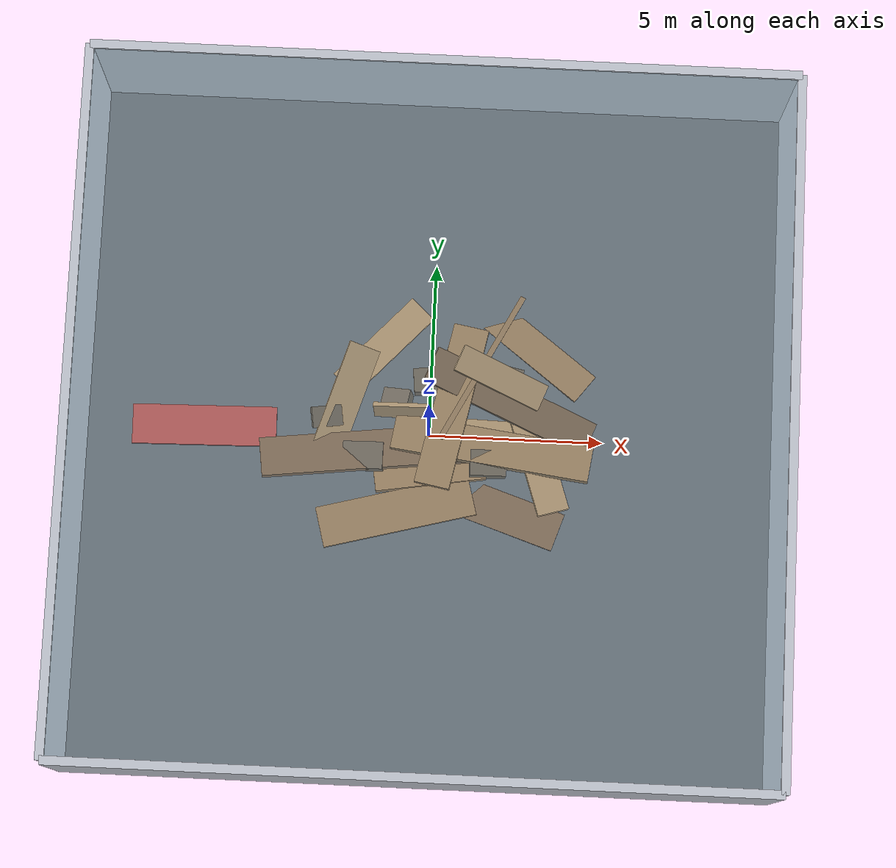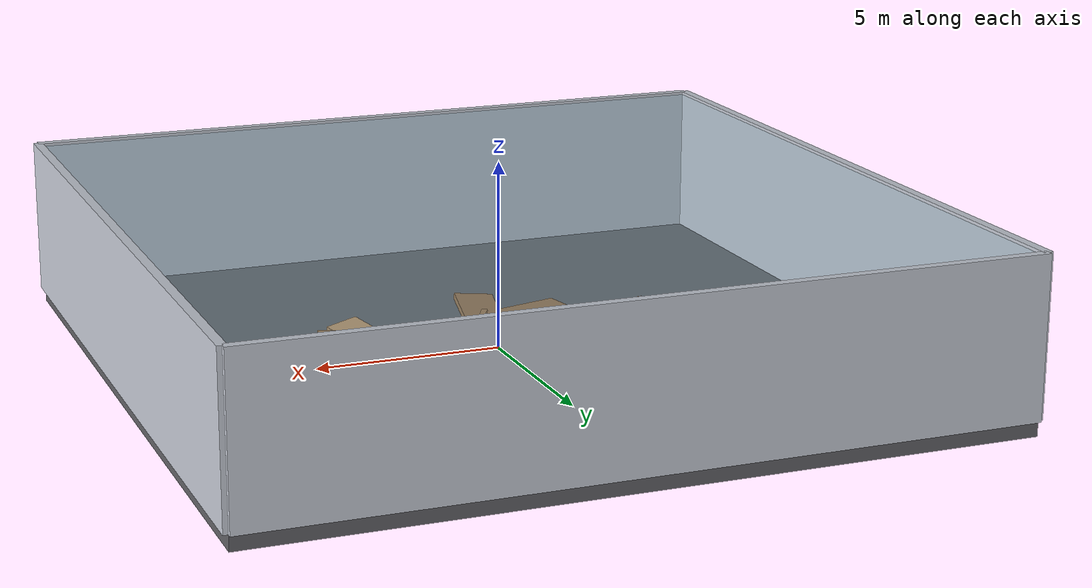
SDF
<sdf version="1.7">
  <world name="tracked_mid360_fastlio_collapse_wood_room_v1_world">
    <gravity>0 0 -9.81</gravity>
    <magnetic_field>6e-06 2.3e-05 -4.2e-05</magnetic_field>
    <atmosphere type="adiabatic" />
    <wind />
    <physics name="collapse_room_physics" type="ode">
      <max_step_size>0.0005</max_step_size>
      <real_time_update_rate>2000</real_time_update_rate>
      <real_time_factor>1</real_time_factor>
      <ode>
        <solver>
          <type>quick</type>
          <iters>120</iters>
          <sor>1.25</sor>
          <use_dynamic_moi_rescaling>0</use_dynamic_moi_rescaling>
        </solver>
        <constraints>
          <cfm>0</cfm>
          <erp>0.2</erp>
          <contact_max_correcting_vel>0.04</contact_max_correcting_vel>
          <contact_surface_layer>0.0008</contact_surface_layer>
        </constraints>
      </ode>
    </physics>
    <scene>
      <ambient>0.5 0.5 0.5 1</ambient>
      <background>0.92 0.94 0.98 1</background>
      <shadows>1</shadows>
    </scene>
    <gui fullscreen="0">
      <camera name="user_camera">
        <pose>0 -0.25 28 0 1.56 1.57</pose>
        <view_controller>orbit</view_controller>
        <projection_type>perspective</projection_type>
      </camera>
    </gui>
    <light name="sun" type="directional">
      <cast_shadows>1</cast_shadows>
      <pose>0 0 18 0 0 0</pose>
      <diffuse>0.8 0.8 0.8 1</diffuse>
      <specular>0.2 0.2 0.2 1</specular>
      <attenuation>
        <range>1000</range>
        <constant>0.9</constant>
        <linear>0.01</linear>
        <quadratic>0.001</quadratic>
      </attenuation>
      <direction>-0.35 0.18 -0.92</direction>
    </light>
    <spherical_coordinates>
      <surface_model>EARTH_WGS84</surface_model>
      <latitude_deg>0</latitude_deg>
      <longitude_deg>0</longitude_deg>
      <elevation>0</elevation>
      <heading_deg>0</heading_deg>
    </spherical_coordinates>
    <model name="floor">
      <static>1</static>
      <pose>0 0 -0.2 0 0 0</pose>
      <link name="link">
        <collision name="collision">
          <geometry>
            <box>
              <size>20 20 0.4</size>
            </box>
          </geometry>
          <surface>
            <contact>
              <ode>
                <kp>2000000</kp>
                <kd>25</kd>
                <max_vel>0.05</max_vel>
                <min_depth>0.001</min_depth>
              </ode>
            </contact>
            <friction>
              <ode>
                <mu>3</mu>
                <mu2>3</mu2>
              </ode>
            </friction>
          </surface>
          <max_contacts>40</max_contacts>
        </collision>
        <visual name="visual">
          <geometry>
            <box>
              <size>20 20 0.4</size>
            </box>
          </geometry>
          <material>
            <ambient>0.38 0.38 0.4 1</ambient>
            <diffuse>0.38 0.38 0.4 1</diffuse>
            <specular>0.1 0.1 0.1 1</specular>
          </material>
        </visual>
        <self_collide>0</self_collide>
        <enable_wind>0</enable_wind>
        <kinematic>0</kinematic>
      </link>
    </model>
    <model name="north_wall">
      <static>1</static>
      <pose>0 10 2.1 0 0 0</pose>
      <link name="link">
        <collision name="collision">
          <geometry>
            <box>
              <size>20 0.25 4.2</size>
            </box>
          </geometry>
          <surface>
            <contact>
              <ode>
                <kp>2000000</kp>
                <kd>25</kd>
                <max_vel>0.05</max_vel>
                <min_depth>0.001</min_depth>
              </ode>
            </contact>
            <friction>
              <ode>
                <mu>3</mu>
                <mu2>3</mu2>
              </ode>
            </friction>
          </surface>
          <max_contacts>40</max_contacts>
        </collision>
        <visual name="visual">
          <geometry>
            <box>
              <size>20 0.25 4.2</size>
            </box>
          </geometry>
          <material>
            <ambient>0.78 0.8 0.84 1</ambient>
            <diffuse>0.78 0.8 0.84 1</diffuse>
            <specular>0.1 0.1 0.1 1</specular>
          </material>
        </visual>
        <self_collide>0</self_collide>
        <enable_wind>0</enable_wind>
        <kinematic>0</kinematic>
      </link>
    </model>
    <model name="south_wall">
      <static>1</static>
      <pose>0 -10 2.1 0 0 0</pose>
      <link name="link">
        <collision name="collision">
          <geometry>
            <box>
              <size>20 0.25 4.2</size>
            </box>
          </geometry>
          <surface>
            <contact>
              <ode>
                <kp>2000000</kp>
                <kd>25</kd>
                <max_vel>0.05</max_vel>
                <min_depth>0.001</min_depth>
              </ode>
            </contact>
            <friction>
              <ode>
                <mu>3</mu>
                <mu2>3</mu2>
              </ode>
            </friction>
          </surface>
          <max_contacts>40</max_contacts>
        </collision>
        <visual name="visual">
          <geometry>
            <box>
              <size>20 0.25 4.2</size>
            </box>
          </geometry>
          <material>
            <ambient>0.78 0.8 0.84 1</ambient>
            <diffuse>0.78 0.8 0.84 1</diffuse>
            <specular>0.1 0.1 0.1 1</specular>
          </material>
        </visual>
        <self_collide>0</self_collide>
        <enable_wind>0</enable_wind>
        <kinematic>0</kinematic>
      </link>
    </model>
    <model name="east_wall">
      <static>1</static>
      <pose>10 0 2.1 0 0 1.570796</pose>
      <link name="link">
        <collision name="collision">
          <geometry>
            <box>
              <size>20 0.25 4.2</size>
            </box>
          </geometry>
          <surface>
            <contact>
              <ode>
                <kp>2000000</kp>
                <kd>25</kd>
                <max_vel>0.05</max_vel>
                <min_depth>0.001</min_depth>
              </ode>
            </contact>
            <friction>
              <ode>
                <mu>3</mu>
                <mu2>3</mu2>
              </ode>
            </friction>
          </surface>
          <max_contacts>40</max_contacts>
        </collision>
        <visual name="visual">
          <geometry>
            <box>
              <size>20 0.25 4.2</size>
            </box>
          </geometry>
          <material>
            <ambient>0.78 0.8 0.84 1</ambient>
            <diffuse>0.78 0.8 0.84 1</diffuse>
            <specular>0.1 0.1 0.1 1</specular>
          </material>
        </visual>
        <self_collide>0</self_collide>
        <enable_wind>0</enable_wind>
        <kinematic>0</kinematic>
      </link>
    </model>
    <model name="west_wall">
      <static>1</static>
      <pose>-10 0 2.1 0 0 1.570796</pose>
      <link name="link">
        <collision name="collision">
          <geometry>
            <box>
              <size>20 0.25 4.2</size>
            </box>
          </geometry>
          <surface>
            <contact>
              <ode>
                <kp>2000000</kp>
                <kd>25</kd>
                <max_vel>0.05</max_vel>
                <min_depth>0.001</min_depth>
              </ode>
            </contact>
            <friction>
              <ode>
                <mu>3</mu>
                <mu2>3</mu2>
              </ode>
            </friction>
          </surface>
          <max_contacts>40</max_contacts>
        </collision>
        <visual name="visual">
          <geometry>
            <box>
              <size>20 0.25 4.2</size>
            </box>
          </geometry>
          <material>
            <ambient>0.78 0.8 0.84 1</ambient>
            <diffuse>0.78 0.8 0.84 1</diffuse>
            <specular>0.1 0.1 0.1 1</specular>
          </material>
        </visual>
        <self_collide>0</self_collide>
        <enable_wind>0</enable_wind>
        <kinematic>0</kinematic>
      </link>
    </model>
    <model name="ceiling_panel">
      <static>1</static>
      <pose>0 0 4.06 0 0 0</pose>
      <link name="link">
        <collision name="collision">
          <geometry>
            <box>
              <size>20 20 0.12</size>
            </box>
          </geometry>
          <surface>
            <contact>
              <ode>
                <kp>2000000</kp>
                <kd>25</kd>
                <max_vel>0.05</max_vel>
                <min_depth>0.001</min_depth>
              </ode>
            </contact>
            <friction>
              <ode>
                <mu>3</mu>
                <mu2>3</mu2>
              </ode>
            </friction>
          </surface>
          <max_contacts>40</max_contacts>
        </collision>
        <visual name="visual">
          <geometry>
            <box>
              <size>20 20 0.12</size>
            </box>
          </geometry>
          <material>
            <ambient>0.6 0.82 0.92 0.22</ambient>
            <diffuse>0.6 0.82 0.92 0.22</diffuse>
            <specular>0.1 0.1 0.1 1</specular>
          </material>
          <transparency>0.72</transparency>
        </visual>
        <self_collide>0</self_collide>
        <enable_wind>0</enable_wind>
        <kinematic>0</kinematic>
      </link>
    </model>
    <model name="board_00">
      <static>0</static>
      <pose>-6.499994 0.000008 0.01581 -0.000079 0.00006 0.02</pose>
      <link name="link">
        <inertial>
          <mass>165.622579</mass>
          <inertia>
            <ixx>18.825325</ixx>
            <ixy>0</ixy>
            <ixz>0</ixz>
            <iyy>239.358635</iyy>
            <iyz>0</iyz>
            <izz>257.166374</izz>
          </inertia>
          <pose>0 0 0 0 0 0</pose>
        </inertial>
        <collision name="collision">
          <geometry>
            <box>
              <size>4.16 1.152 0.192</size>
            </box>
          </geometry>
          <surface>
            <contact>
              <ode>
                <kp>1500000</kp>
                <kd>20</kd>
                <max_vel>0.04</max_vel>
                <min_depth>0.001</min_depth>
              </ode>
            </contact>
            <friction>
              <ode>
                <mu>2.2</mu>
                <mu2>2.2</mu2>
              </ode>
              <torsional>
                <ode />
              </torsional>
            </friction>
            <bounce />
          </surface>
          <max_contacts>20</max_contacts>
        </collision>
        <visual name="visual">
          <geometry>
            <box>
              <size>4.16 1.152 0.192</size>
            </box>
          </geometry>
          <material>
            <ambient>0.76 0.26 0.22 1</ambient>
            <diffuse>0.76 0.26 0.22 1</diffuse>
            <specular>0.08 0.08 0.08 1</specular>
          </material>
        </visual>
        <self_collide>0</self_collide>
        <enable_wind>0</enable_wind>
        <kinematic>0</kinematic>
      </link>
    </model>
    <model name="board_01">
      <static>0</static>
      <pose>-1.803965 -0.533285 0.165316 -0.172138 0.054607 0.126203</pose>
      <link name="link">
        <inertial>
          <mass>242.06377</mass>
          <inertia>
            <ixx>27.513936</ixx>
            <ixy>0</ixy>
            <ixz>0</ixz>
            <iyy>746.429131</iyy>
            <iyz>0</iyz>
            <izz>772.455827</izz>
          </inertia>
          <pose>0 0 0 0 0 0</pose>
        </inertial>
        <collision name="collision">
          <geometry>
            <box>
              <size>6.08 1.152 0.192</size>
            </box>
          </geometry>
          <surface>
            <contact>
              <ode>
                <kp>1500000</kp>
                <kd>20</kd>
                <max_vel>0.04</max_vel>
                <min_depth>0.001</min_depth>
              </ode>
            </contact>
            <friction>
              <ode>
                <mu>2.2</mu>
                <mu2>2.2</mu2>
              </ode>
              <torsional>
                <ode />
              </torsional>
            </friction>
            <bounce />
          </surface>
          <max_contacts>20</max_contacts>
        </collision>
        <visual name="visual">
          <geometry>
            <box>
              <size>6.08 1.152 0.192</size>
            </box>
          </geometry>
          <material>
            <ambient>0.51 0.35 0.22 1</ambient>
            <diffuse>0.51 0.35 0.22 1</diffuse>
            <specular>0.08 0.08 0.08 1</specular>
          </material>
        </visual>
        <self_collide>0</self_collide>
        <enable_wind>0</enable_wind>
        <kinematic>0</kinematic>
      </link>
    </model>
    <model name="board_02">
      <static>0</static>
      <pose>1.814817 -0.328399 0.293085 -0.189969 -0.051766 -0.137706</pose>
      <link name="link">
        <inertial>
          <mass>198.534758</mass>
          <inertia>
            <ixx>20.194426</ixx>
            <ixy>0</ixy>
            <ixz>0</ixz>
            <iyy>549.518799</iyy>
            <iyz>0</iyz>
            <izz>568.493427</izz>
          </inertia>
          <pose>0 0 0 0 0 0</pose>
        </inertial>
        <collision name="collision">
          <geometry>
            <box>
              <size>5.76 1.088 0.192</size>
            </box>
          </geometry>
          <surface>
            <contact>
              <ode>
                <kp>1500000</kp>
                <kd>20</kd>
                <max_vel>0.04</max_vel>
                <min_depth>0.001</min_depth>
              </ode>
            </contact>
            <friction>
              <ode>
                <mu>2.2</mu>
                <mu2>2.2</mu2>
              </ode>
              <torsional>
                <ode />
              </torsional>
            </friction>
            <bounce />
          </surface>
          <max_contacts>20</max_contacts>
        </collision>
        <visual name="visual">
          <geometry>
            <box>
              <size>5.76 1.088 0.192</size>
            </box>
          </geometry>
          <material>
            <ambient>0.63 0.45 0.27 1</ambient>
            <diffuse>0.63 0.45 0.27 1</diffuse>
            <specular>0.08 0.08 0.08 1</specular>
          </material>
        </visual>
        <self_collide>0</self_collide>
        <enable_wind>0</enable_wind>
        <kinematic>0</kinematic>
      </link>
    </model>
    <model name="board_03">
      <static>0</static>
      <pose>0.040744 -0.999185 -0.037157 -0.218442 0.00703 0.159845</pose>
      <link name="link">
        <inertial>
          <mass>81.1008</mass>
          <inertia>
            <ixx>6.401556</ixx>
            <ixy>0</ixy>
            <ixz>0</ixz>
            <iyy>69.379031</iyy>
            <iyz>0</iyz>
            <izz>75.434557</izz>
          </inertia>
          <pose>0 0 0 0 0 0</pose>
        </inertial>
        <collision name="collision">
          <geometry>
            <box>
              <size>3.2 0.96 0.16</size>
            </box>
          </geometry>
          <surface>
            <contact>
              <ode>
                <kp>1500000</kp>
                <kd>20</kd>
                <max_vel>0.04</max_vel>
                <min_depth>0.001</min_depth>
              </ode>
            </contact>
            <friction>
              <ode>
                <mu>2.2</mu>
                <mu2>2.2</mu2>
              </ode>
              <torsional>
                <ode />
              </torsional>
            </friction>
            <bounce />
          </surface>
          <max_contacts>20</max_contacts>
        </collision>
        <visual name="visual">
          <geometry>
            <box>
              <size>3.2 0.96 0.16</size>
            </box>
          </geometry>
          <material>
            <ambient>0.63 0.45 0.27 1</ambient>
            <diffuse>0.63 0.45 0.27 1</diffuse>
            <specular>0.08 0.08 0.08 1</specular>
          </material>
        </visual>
        <self_collide>0</self_collide>
        <enable_wind>0</enable_wind>
        <kinematic>0</kinematic>
      </link>
    </model>
    <model name="board_04">
      <static>0</static>
      <pose>0.611759 0.743547 0.852571 -0.076768 0.056358 1.370142</pose>
      <link name="link">
        <inertial>
          <mass>129.76128</mass>
          <inertia>
            <ixx>11.615538</ixx>
            <ixy>0</ixy>
            <ixz>0</ixz>
            <iyy>249.418482</iyy>
            <iyz>0</iyz>
            <izz>260.480371</izz>
          </inertia>
          <pose>0 0 0 0 0 0</pose>
        </inertial>
        <collision name="collision">
          <geometry>
            <box>
              <size>4.8 1.024 0.16</size>
            </box>
          </geometry>
          <surface>
            <contact>
              <ode>
                <kp>1500000</kp>
                <kd>20</kd>
                <max_vel>0.04</max_vel>
                <min_depth>0.001</min_depth>
              </ode>
            </contact>
            <friction>
              <ode>
                <mu>2.2</mu>
                <mu2>2.2</mu2>
              </ode>
              <torsional>
                <ode />
              </torsional>
            </friction>
            <bounce />
          </surface>
          <max_contacts>20</max_contacts>
        </collision>
        <visual name="visual">
          <geometry>
            <box>
              <size>4.8 1.024 0.16</size>
            </box>
          </geometry>
          <material>
            <ambient>0.63 0.45 0.27 1</ambient>
            <diffuse>0.63 0.45 0.27 1</diffuse>
            <specular>0.08 0.08 0.08 1</specular>
          </material>
        </visual>
        <self_collide>0</self_collide>
        <enable_wind>0</enable_wind>
        <kinematic>0</kinematic>
      </link>
    </model>
    <model name="board_05">
      <static>0</static>
      <pose>2.294868 0.993535 0.524416 -0.032035 0.203668 -0.381216</pose>
      <link name="link">
        <inertial>
          <mass>155.713536</mass>
          <inertia>
            <ixx>14.802336</ixx>
            <ixy>0</ixy>
            <ixz>0</ixz>
            <iyy>340.493599</iyy>
            <iyz>0</iyz>
            <izz>354.631557</izz>
          </inertia>
          <pose>0 0 0 0 0 0</pose>
        </inertial>
        <collision name="collision">
          <geometry>
            <box>
              <size>5.12 1.056 0.16</size>
            </box>
          </geometry>
          <surface>
            <contact>
              <ode>
                <kp>1500000</kp>
                <kd>20</kd>
                <max_vel>0.04</max_vel>
                <min_depth>0.001</min_depth>
              </ode>
            </contact>
            <friction>
              <ode>
                <mu>2.2</mu>
                <mu2>2.2</mu2>
              </ode>
              <torsional>
                <ode />
              </torsional>
            </friction>
            <bounce />
          </surface>
          <max_contacts>20</max_contacts>
        </collision>
        <visual name="visual">
          <geometry>
            <box>
              <size>5.12 1.056 0.16</size>
            </box>
          </geometry>
          <material>
            <ambient>0.51 0.35 0.22 1</ambient>
            <diffuse>0.51 0.35 0.22 1</diffuse>
            <specular>0.08 0.08 0.08 1</specular>
          </material>
        </visual>
        <self_collide>0</self_collide>
        <enable_wind>0</enable_wind>
        <kinematic>0</kinematic>
      </link>
    </model>
    <model name="board_06">
      <static>0</static>
      <pose>1.389698 1.900959 0.467763 1.648339 0.039225 1.09234</pose>
      <link name="link">
        <inertial>
          <mass>121.6512</mass>
          <inertia>
            <ixx>9.602335</ixx>
            <ixy>0</ixy>
            <ixz>0</ixz>
            <iyy>233.829827</iyy>
            <iyz>0</iyz>
            <izz>242.913116</izz>
          </inertia>
          <pose>0 0 0 0 0 0</pose>
        </inertial>
        <collision name="collision">
          <geometry>
            <box>
              <size>4.8 0.96 0.16</size>
            </box>
          </geometry>
          <surface>
            <contact>
              <ode>
                <kp>1500000</kp>
                <kd>20</kd>
                <max_vel>0.04</max_vel>
                <min_depth>0.001</min_depth>
              </ode>
            </contact>
            <friction>
              <ode>
                <mu>2.2</mu>
                <mu2>2.2</mu2>
              </ode>
              <torsional>
                <ode />
              </torsional>
            </friction>
            <bounce />
          </surface>
          <max_contacts>20</max_contacts>
        </collision>
        <visual name="visual">
          <geometry>
            <box>
              <size>4.8 0.96 0.16</size>
            </box>
          </geometry>
          <material>
            <ambient>0.63 0.45 0.27 1</ambient>
            <diffuse>0.63 0.45 0.27 1</diffuse>
            <specular>0.08 0.08 0.08 1</specular>
          </material>
        </visual>
        <self_collide>0</self_collide>
        <enable_wind>0</enable_wind>
        <kinematic>0</kinematic>
      </link>
    </model>
    <model name="board_07">
      <static>0</static>
      <pose>1.992812 1.640696 0.808405 -0.013718 0.254187 -0.376162</pose>
      <link name="link">
        <inertial>
          <mass>45.95712</mass>
          <inertia>
            <ixx>2.513793</ixx>
            <ixy>0</ixy>
            <ixz>0</ixz>
            <iyy>28.396843</iyy>
            <iyz>0</iyz>
            <izz>30.785143</izz>
          </inertia>
          <pose>0 0 0 0 0 0</pose>
        </inertial>
        <collision name="collision">
          <geometry>
            <box>
              <size>2.72 0.8 0.128</size>
            </box>
          </geometry>
          <surface>
            <contact>
              <ode>
                <kp>1500000</kp>
                <kd>20</kd>
                <max_vel>0.04</max_vel>
                <min_depth>0.001</min_depth>
              </ode>
            </contact>
            <friction>
              <ode>
                <mu>2.2</mu>
                <mu2>2.2</mu2>
              </ode>
              <torsional>
                <ode />
              </torsional>
            </friction>
            <bounce />
          </surface>
          <max_contacts>20</max_contacts>
        </collision>
        <visual name="visual">
          <geometry>
            <box>
              <size>2.72 0.8 0.128</size>
            </box>
          </geometry>
          <material>
            <ambient>0.74 0.56 0.36 1</ambient>
            <diffuse>0.74 0.56 0.36 1</diffuse>
            <specular>0.08 0.08 0.08 1</specular>
          </material>
        </visual>
        <self_collide>0</self_collide>
        <enable_wind>0</enable_wind>
        <kinematic>0</kinematic>
      </link>
    </model>
    <model name="board_08">
      <static>0</static>
      <pose>-0.859518 -2.250558 0.023778 -0.03335 -0.000106 0.259402</pose>
      <link name="link">
        <inertial>
          <mass>140.034048</mass>
          <inertia>
            <ixx>16.657704</ixx>
            <ixy>0</ixy>
            <ixz>0</ixz>
            <iyy>234.510352</iyy>
            <iyz>0</iyz>
            <izz>250.570577</izz>
          </inertia>
          <pose>0 0 0 0 0 0</pose>
        </inertial>
        <collision name="collision">
          <geometry>
            <box>
              <size>4.48 1.184 0.16</size>
            </box>
          </geometry>
          <surface>
            <contact>
              <ode>
                <kp>1500000</kp>
                <kd>20</kd>
                <max_vel>0.04</max_vel>
                <min_depth>0.001</min_depth>
              </ode>
            </contact>
            <friction>
              <ode>
                <mu>2.2</mu>
                <mu2>2.2</mu2>
              </ode>
              <torsional>
                <ode />
              </torsional>
            </friction>
            <bounce />
          </surface>
          <max_contacts>20</max_contacts>
        </collision>
        <visual name="visual">
          <geometry>
            <box>
              <size>4.48 1.184 0.16</size>
            </box>
          </geometry>
          <material>
            <ambient>0.63 0.45 0.27 1</ambient>
            <diffuse>0.63 0.45 0.27 1</diffuse>
            <specular>0.08 0.08 0.08 1</specular>
          </material>
        </visual>
        <self_collide>0</self_collide>
        <enable_wind>0</enable_wind>
        <kinematic>0</kinematic>
      </link>
    </model>
    <model name="board_09">
      <static>0</static>
      <pose>1.846465 -2.007146 -0.06277 -0.013036 -0.024457 -0.322588</pose>
      <link name="link">
        <inertial>
          <mass>134.18496</mass>
          <inertia>
            <ixx>14.313062</ixx>
            <ixy>0</ixy>
            <ixz>0</ixz>
            <iyy>193.798865</iyy>
            <iyz>0</iyz>
            <izz>207.539405</izz>
          </inertia>
          <pose>0 0 0 0 0 0</pose>
        </inertial>
        <collision name="collision">
          <geometry>
            <box>
              <size>4.16 1.12 0.16</size>
            </box>
          </geometry>
          <surface>
            <contact>
              <ode>
                <kp>1500000</kp>
                <kd>20</kd>
                <max_vel>0.04</max_vel>
                <min_depth>0.001</min_depth>
              </ode>
            </contact>
            <friction>
              <ode>
                <mu>2.2</mu>
                <mu2>2.2</mu2>
              </ode>
              <torsional>
                <ode />
              </torsional>
            </friction>
            <bounce />
          </surface>
          <max_contacts>20</max_contacts>
        </collision>
        <visual name="visual">
          <geometry>
            <box>
              <size>4.16 1.12 0.16</size>
            </box>
          </geometry>
          <material>
            <ambient>0.51 0.35 0.22 1</ambient>
            <diffuse>0.51 0.35 0.22 1</diffuse>
            <specular>0.08 0.08 0.08 1</specular>
          </material>
        </visual>
        <self_collide>0</self_collide>
        <enable_wind>0</enable_wind>
        <kinematic>0</kinematic>
      </link>
    </model>
    <model name="board_10">
      <static>0</static>
      <pose>-2.50196 0.804743 0.21757 0.250574 -0.085639 1.263207</pose>
      <link name="link">
        <inertial>
          <mass>68.989747</mass>
          <inertia>
            <ixx>5.045266</ixx>
            <ixy>0</ixy>
            <ixz>0</ixz>
            <iyy>71.328408</iyy>
            <iyz>0</iyz>
            <izz>76.185286</izz>
          </inertia>
          <pose>0 0 0 0 0 0</pose>
        </inertial>
        <collision name="collision">
          <geometry>
            <box>
              <size>3.52 0.928 0.128</size>
            </box>
          </geometry>
          <surface>
            <contact>
              <ode>
                <kp>1500000</kp>
                <kd>20</kd>
                <max_vel>0.04</max_vel>
                <min_depth>0.001</min_depth>
              </ode>
            </contact>
            <friction>
              <ode>
                <mu>2.2</mu>
                <mu2>2.2</mu2>
              </ode>
              <torsional>
                <ode />
              </torsional>
            </friction>
            <bounce />
          </surface>
          <max_contacts>20</max_contacts>
        </collision>
        <visual name="visual">
          <geometry>
            <box>
              <size>3.52 0.928 0.128</size>
            </box>
          </geometry>
          <material>
            <ambient>0.74 0.56 0.36 1</ambient>
            <diffuse>0.74 0.56 0.36 1</diffuse>
            <specular>0.08 0.08 0.08 1</specular>
          </material>
        </visual>
        <self_collide>0</self_collide>
        <enable_wind>0</enable_wind>
        <kinematic>0</kinematic>
      </link>
    </model>
    <model name="board_11">
      <static>0</static>
      <pose>3.090072 -0.402027 0.259358 -0.119801 -0.106914 -1.259036</pose>
      <link name="link">
        <inertial>
          <mass>72.125645</mass>
          <inertia>
            <ixx>5.274596</ixx>
            <ixy>0</ixy>
            <ixz>0</ixz>
            <iyy>81.49467</iyy>
            <iyz>0</iyz>
            <izz>86.572315</izz>
          </inertia>
          <pose>0 0 0 0 0 0</pose>
        </inertial>
        <collision name="collision">
          <geometry>
            <box>
              <size>3.68 0.928 0.128</size>
            </box>
          </geometry>
          <surface>
            <contact>
              <ode>
                <kp>1500000</kp>
                <kd>20</kd>
                <max_vel>0.04</max_vel>
                <min_depth>0.001</min_depth>
              </ode>
            </contact>
            <friction>
              <ode>
                <mu>2.2</mu>
                <mu2>2.2</mu2>
              </ode>
              <torsional>
                <ode />
              </torsional>
            </friction>
            <bounce />
          </surface>
          <max_contacts>20</max_contacts>
        </collision>
        <visual name="visual">
          <geometry>
            <box>
              <size>3.68 0.928 0.128</size>
            </box>
          </geometry>
          <material>
            <ambient>0.74 0.56 0.36 1</ambient>
            <diffuse>0.74 0.56 0.36 1</diffuse>
            <specular>0.08 0.08 0.08 1</specular>
          </material>
        </visual>
        <self_collide>0</self_collide>
        <enable_wind>0</enable_wind>
        <kinematic>0</kinematic>
      </link>
    </model>
    <model name="board_12">
      <static>0</static>
      <pose>-1.434183 2.551864 0.0504 0.003328 -0.000502 0.820729</pose>
      <link name="link">
        <inertial>
          <mass>59.47392</mass>
          <inertia>
            <ixx>3.919252</ixx>
            <ixy>0</ixy>
            <ixz>0</ixz>
            <iyy>50.83228</iyy>
            <iyz>0</iyz>
            <izz>54.589129</izz>
          </inertia>
          <pose>0 0 0 0 0 0</pose>
        </inertial>
        <collision name="collision">
          <geometry>
            <box>
              <size>3.2 0.88 0.128</size>
            </box>
          </geometry>
          <surface>
            <contact>
              <ode>
                <kp>1500000</kp>
                <kd>20</kd>
                <max_vel>0.04</max_vel>
                <min_depth>0.001</min_depth>
              </ode>
            </contact>
            <friction>
              <ode>
                <mu>2.2</mu>
                <mu2>2.2</mu2>
              </ode>
              <torsional>
                <ode />
              </torsional>
            </friction>
            <bounce />
          </surface>
          <max_contacts>20</max_contacts>
        </collision>
        <visual name="visual">
          <geometry>
            <box>
              <size>3.2 0.88 0.128</size>
            </box>
          </geometry>
          <material>
            <ambient>0.74 0.56 0.36 1</ambient>
            <diffuse>0.74 0.56 0.36 1</diffuse>
            <specular>0.08 0.08 0.08 1</specular>
          </material>
        </visual>
        <self_collide>0</self_collide>
        <enable_wind>0</enable_wind>
        <kinematic>0</kinematic>
      </link>
    </model>
    <model name="board_13">
      <static>0</static>
      <pose>3.054547 2.622341 -0.027958 -0.019097 -0.027064 -0.654342</pose>
      <link name="link">
        <inertial>
          <mass>71.368704</mass>
          <inertia>
            <ixx>5.578559</ixx>
            <ixy>0</ixy>
            <ixz>0</ixz>
            <iyy>73.788008</iyy>
            <iyz>0</iyz>
            <izz>79.171682</izz>
          </inertia>
          <pose>0 0 0 0 0 0</pose>
        </inertial>
        <collision name="collision">
          <geometry>
            <box>
              <size>3.52 0.96 0.128</size>
            </box>
          </geometry>
          <surface>
            <contact>
              <ode>
                <kp>1500000</kp>
                <kd>20</kd>
                <max_vel>0.04</max_vel>
                <min_depth>0.001</min_depth>
              </ode>
            </contact>
            <friction>
              <ode>
                <mu>2.2</mu>
                <mu2>2.2</mu2>
              </ode>
              <torsional>
                <ode />
              </torsional>
            </friction>
            <bounce />
          </surface>
          <max_contacts>20</max_contacts>
        </collision>
        <visual name="visual">
          <geometry>
            <box>
              <size>3.52 0.96 0.128</size>
            </box>
          </geometry>
          <material>
            <ambient>0.63 0.45 0.27 1</ambient>
            <diffuse>0.63 0.45 0.27 1</diffuse>
            <specular>0.08 0.08 0.08 1</specular>
          </material>
        </visual>
        <self_collide>0</self_collide>
        <enable_wind>0</enable_wind>
        <kinematic>0</kinematic>
      </link>
    </model>
    <model name="board_14">
      <static>0</static>
      <pose>-0.345463 0.639458 0.33672 1.293747 -0.064934 -0.003149</pose>
      <link name="link">
        <inertial>
          <mass>43.25376</mass>
          <inertia>
            <ixx>2.365923</ixx>
            <ixy>0</ixy>
            <ixz>0</ixz>
            <iyy>23.681376</iyy>
            <iyz>0</iyz>
            <izz>25.929187</izz>
          </inertia>
          <pose>0 0 0 0 0 0</pose>
        </inertial>
        <collision name="collision">
          <geometry>
            <box>
              <size>2.56 0.8 0.128</size>
            </box>
          </geometry>
          <surface>
            <contact>
              <ode>
                <kp>1500000</kp>
                <kd>20</kd>
                <max_vel>0.04</max_vel>
                <min_depth>0.001</min_depth>
              </ode>
            </contact>
            <friction>
              <ode>
                <mu>2.2</mu>
                <mu2>2.2</mu2>
              </ode>
              <torsional>
                <ode />
              </torsional>
            </friction>
            <bounce />
          </surface>
          <max_contacts>20</max_contacts>
        </collision>
        <visual name="visual">
          <geometry>
            <box>
              <size>2.56 0.8 0.128</size>
            </box>
          </geometry>
          <material>
            <ambient>0.74 0.56 0.36 1</ambient>
            <diffuse>0.74 0.56 0.36 1</diffuse>
            <specular>0.08 0.08 0.08 1</specular>
          </material>
        </visual>
        <self_collide>0</self_collide>
        <enable_wind>0</enable_wind>
        <kinematic>0</kinematic>
      </link>
    </model>
    <model name="board_15">
      <static>0</static>
      <pose>1.271546 0.141267 0.057795 -0.039535 0.008392 -0.022959</pose>
      <link name="link">
        <inertial>
          <mass>38.928384</mass>
          <inertia>
            <ixx>1.966558</ixx>
            <ixy>0</ixy>
            <ixz>0</ixz>
            <iyy>18.738775</iyy>
            <iyz>0</iyz>
            <izz>20.599032</izz>
          </inertia>
          <pose>0 0 0 0 0 0</pose>
        </inertial>
        <collision name="collision">
          <geometry>
            <box>
              <size>2.4 0.768 0.128</size>
            </box>
          </geometry>
          <surface>
            <contact>
              <ode>
                <kp>1500000</kp>
                <kd>20</kd>
                <max_vel>0.04</max_vel>
                <min_depth>0.001</min_depth>
              </ode>
            </contact>
            <friction>
              <ode>
                <mu>2.2</mu>
                <mu2>2.2</mu2>
              </ode>
              <torsional>
                <ode />
              </torsional>
            </friction>
            <bounce />
          </surface>
          <max_contacts>20</max_contacts>
        </collision>
        <visual name="visual">
          <geometry>
            <box>
              <size>2.4 0.768 0.128</size>
            </box>
          </geometry>
          <material>
            <ambient>0.74 0.56 0.36 1</ambient>
            <diffuse>0.74 0.56 0.36 1</diffuse>
            <specular>0.08 0.08 0.08 1</specular>
          </material>
        </visual>
        <self_collide>0</self_collide>
        <enable_wind>0</enable_wind>
        <kinematic>0</kinematic>
      </link>
    </model>
    <model name="support_00">
      <static>0</static>
      <pose>-1.869624 -0.710733 0.03803 -0.057563 -0.068166 0.003742</pose>
      <link name="link">
        <inertial>
          <mass>139.50508</mass>
          <inertia>
            <ixx>11.304634</ixx>
            <ixy>0</ixy>
            <ixz>0</ixz>
            <iyy>19.553962</iyy>
            <iyz>0</iyz>
            <izz>23.037012</izz>
          </inertia>
          <pose>0 0 0 0 0 0</pose>
        </inertial>
        <collision name="collision">
          <geometry>
            <box>
              <size>1.16 0.7975 0.58</size>
            </box>
          </geometry>
          <surface>
            <contact>
              <ode>
                <kp>1500000</kp>
                <kd>20</kd>
                <max_vel>0.04</max_vel>
                <min_depth>0.001</min_depth>
              </ode>
            </contact>
            <friction>
              <ode>
                <mu>2.2</mu>
                <mu2>2.2</mu2>
              </ode>
              <torsional>
                <ode />
              </torsional>
            </friction>
            <bounce />
          </surface>
          <max_contacts>20</max_contacts>
        </collision>
        <visual name="visual">
          <geometry>
            <box>
              <size>1.16 0.7975 0.58</size>
            </box>
          </geometry>
          <material>
            <ambient>0.42 0.33 0.25 1</ambient>
            <diffuse>0.42 0.33 0.25 1</diffuse>
            <specular>0.08 0.08 0.08 1</specular>
          </material>
        </visual>
        <self_collide>0</self_collide>
        <enable_wind>0</enable_wind>
        <kinematic>0</kinematic>
      </link>
    </model>
    <model name="support_01">
      <static>0</static>
      <pose>1.719905 -0.782958 0.163269 -0.034848 0.062934 0.015695</pose>
      <link name="link">
        <inertial>
          <mass>106.835527</mass>
          <inertia>
            <ixx>7.48739</ixx>
            <ixy>0</ixy>
            <ixz>0</ixz>
            <iyy>12.129572</iyy>
            <iyz>0</iyz>
            <izz>14.765133</izz>
          </inertia>
          <pose>0 0 0 0 0 0</pose>
        </inertial>
        <collision name="collision">
          <geometry>
            <box>
              <size>1.044 0.754 0.522</size>
            </box>
          </geometry>
          <surface>
            <contact>
              <ode>
                <kp>1500000</kp>
                <kd>20</kd>
                <max_vel>0.04</max_vel>
                <min_depth>0.001</min_depth>
              </ode>
            </contact>
            <friction>
              <ode>
                <mu>2.2</mu>
                <mu2>2.2</mu2>
              </ode>
              <torsional>
                <ode />
              </torsional>
            </friction>
            <bounce />
          </surface>
          <max_contacts>20</max_contacts>
        </collision>
        <visual name="visual">
          <geometry>
            <box>
              <size>1.044 0.754 0.522</size>
            </box>
          </geometry>
          <material>
            <ambient>0.42 0.33 0.25 1</ambient>
            <diffuse>0.42 0.33 0.25 1</diffuse>
            <specular>0.08 0.08 0.08 1</specular>
          </material>
        </visual>
        <self_collide>0</self_collide>
        <enable_wind>0</enable_wind>
        <kinematic>0</kinematic>
      </link>
    </model>
    <model name="support_02">
      <static>0</static>
      <pose>-0.022067 1.549204 0.281575 0 0 0.098637</pose>
      <link name="link">
        <inertial>
          <mass>113.836145</mass>
          <inertia>
            <ixx>8.456698</ixx>
            <ixy>0</ixy>
            <ixz>0</ixz>
            <iyy>13.083947</iyy>
            <iyz>0</iyz>
            <izz>13.817925</izz>
          </inertia>
          <pose>0 0 0 0 0 0</pose>
        </inertial>
        <collision name="collision">
          <geometry>
            <box>
              <size>0.986 0.696 0.638</size>
            </box>
          </geometry>
          <surface>
            <contact>
              <ode>
                <kp>1500000</kp>
                <kd>20</kd>
                <max_vel>0.04</max_vel>
                <min_depth>0.001</min_depth>
              </ode>
            </contact>
            <friction>
              <ode>
                <mu>2.2</mu>
                <mu2>2.2</mu2>
              </ode>
              <torsional>
                <ode />
              </torsional>
            </friction>
            <bounce />
          </surface>
          <max_contacts>20</max_contacts>
        </collision>
        <visual name="visual">
          <geometry>
            <box>
              <size>0.986 0.696 0.638</size>
            </box>
          </geometry>
          <material>
            <ambient>0.42 0.33 0.25 1</ambient>
            <diffuse>0.42 0.33 0.25 1</diffuse>
            <specular>0.08 0.08 0.08 1</specular>
          </material>
        </visual>
        <self_collide>0</self_collide>
        <enable_wind>0</enable_wind>
        <kinematic>0</kinematic>
      </link>
    </model>
    <model name="support_03">
      <static>0</static>
      <pose>2.093331 1.755836 0.217955 0.049059 0.019968 -0.214019</pose>
      <link name="link">
        <inertial>
          <mass>91.883119</mass>
          <inertia>
            <ixx>5.492872</ixx>
            <ixy>0</ixy>
            <ixz>0</ixz>
            <iyy>9.974747</iyy>
            <iyz>0</iyz>
            <izz>11.29484</izz>
          </inertia>
          <pose>0 0 0 0 0 0</pose>
        </inertial>
        <collision name="collision">
          <geometry>
            <box>
              <size>1.015 0.667 0.522</size>
            </box>
          </geometry>
          <surface>
            <contact>
              <ode>
                <kp>1500000</kp>
                <kd>20</kd>
                <max_vel>0.04</max_vel>
                <min_depth>0.001</min_depth>
              </ode>
            </contact>
            <friction>
              <ode>
                <mu>2.2</mu>
                <mu2>2.2</mu2>
              </ode>
              <torsional>
                <ode />
              </torsional>
            </friction>
            <bounce />
          </surface>
          <max_contacts>20</max_contacts>
        </collision>
        <visual name="visual">
          <geometry>
            <box>
              <size>1.015 0.667 0.522</size>
            </box>
          </geometry>
          <material>
            <ambient>0.42 0.33 0.25 1</ambient>
            <diffuse>0.42 0.33 0.25 1</diffuse>
            <specular>0.08 0.08 0.08 1</specular>
          </material>
        </visual>
        <self_collide>0</self_collide>
        <enable_wind>0</enable_wind>
        <kinematic>0</kinematic>
      </link>
    </model>
    <model name="support_04">
      <static>0</static>
      <pose>0.851809 2.390177 0.218097 0 0 -0.260557</pose>
      <link name="link">
        <inertial>
          <mass>69.19452</mass>
          <inertia>
            <ixx>3.588543</ixx>
            <ixy>0</ixy>
            <ixz>0</ixz>
            <iyy>5.901699</iyy>
            <iyz>0</iyz>
            <izz>7.007358</izz>
          </inertia>
          <pose>0 0 0 0 0 0</pose>
        </inertial>
        <collision name="collision">
          <geometry>
            <box>
              <size>0.899 0.638 0.464</size>
            </box>
          </geometry>
          <surface>
            <contact>
              <ode>
                <kp>1500000</kp>
                <kd>20</kd>
                <max_vel>0.04</max_vel>
                <min_depth>0.001</min_depth>
              </ode>
            </contact>
            <friction>
              <ode>
                <mu>2.2</mu>
                <mu2>2.2</mu2>
              </ode>
              <torsional>
                <ode />
              </torsional>
            </friction>
            <bounce />
          </surface>
          <max_contacts>20</max_contacts>
        </collision>
        <visual name="visual">
          <geometry>
            <box>
              <size>0.899 0.638 0.464</size>
            </box>
          </geometry>
          <material>
            <ambient>0.42 0.33 0.25 1</ambient>
            <diffuse>0.42 0.33 0.25 1</diffuse>
            <specular>0.08 0.08 0.08 1</specular>
          </material>
        </visual>
        <self_collide>0</self_collide>
        <enable_wind>0</enable_wind>
        <kinematic>0</kinematic>
      </link>
    </model>
    <model name="support_05">
      <static>0</static>
      <pose>-2.990417 0.419829 0.083286 0.154474 0.124866 0.165506</pose>
      <link name="link">
        <inertial>
          <mass>63.918691</mass>
          <inertia>
            <ixx>3.122306</ixx>
            <ixy>0</ixy>
            <ixz>0</ixz>
            <iyy>5.178458</iyy>
            <iyz>0</iyz>
            <izz>6.00719</izz>
          </inertia>
          <pose>0 0 0 0 0 0</pose>
        </inertial>
        <collision name="collision">
          <geometry>
            <box>
              <size>0.87 0.609 0.464</size>
            </box>
          </geometry>
          <surface>
            <contact>
              <ode>
                <kp>1500000</kp>
                <kd>20</kd>
                <max_vel>0.04</max_vel>
                <min_depth>0.001</min_depth>
              </ode>
            </contact>
            <friction>
              <ode>
                <mu>2.2</mu>
                <mu2>2.2</mu2>
              </ode>
              <torsional>
                <ode />
              </torsional>
            </friction>
            <bounce />
          </surface>
          <max_contacts>20</max_contacts>
        </collision>
        <visual name="visual">
          <geometry>
            <box>
              <size>0.87 0.609 0.464</size>
            </box>
          </geometry>
          <material>
            <ambient>0.42 0.33 0.25 1</ambient>
            <diffuse>0.42 0.33 0.25 1</diffuse>
            <specular>0.08 0.08 0.08 1</specular>
          </material>
        </visual>
        <self_collide>0</self_collide>
        <enable_wind>0</enable_wind>
        <kinematic>0</kinematic>
      </link>
    </model>
    <model name="support_06">
      <static>0</static>
      <pose>2.958581 -0.54385 0.058493 -0.10313 0.0208 -0.190252</pose>
      <link name="link">
        <inertial>
          <mass>77.843835</mass>
          <inertia>
            <ixx>4.408089</ixx>
            <ixy>0</ixy>
            <ixz>0</ixz>
            <iyy>7.010389</iyy>
            <iyz>0</iyz>
            <izz>7.883278</izz>
          </inertia>
          <pose>0 0 0 0 0 0</pose>
        </inertial>
        <collision name="collision">
          <geometry>
            <box>
              <size>0.899 0.638 0.522</size>
            </box>
          </geometry>
          <surface>
            <contact>
              <ode>
                <kp>1500000</kp>
                <kd>20</kd>
                <max_vel>0.04</max_vel>
                <min_depth>0.001</min_depth>
              </ode>
            </contact>
            <friction>
              <ode>
                <mu>2.2</mu>
                <mu2>2.2</mu2>
              </ode>
              <torsional>
                <ode />
              </torsional>
            </friction>
            <bounce />
          </surface>
          <max_contacts>20</max_contacts>
        </collision>
        <visual name="visual">
          <geometry>
            <box>
              <size>0.899 0.638 0.522</size>
            </box>
          </geometry>
          <material>
            <ambient>0.42 0.33 0.25 1</ambient>
            <diffuse>0.42 0.33 0.25 1</diffuse>
            <specular>0.08 0.08 0.08 1</specular>
          </material>
        </visual>
        <self_collide>0</self_collide>
        <enable_wind>0</enable_wind>
        <kinematic>0</kinematic>
      </link>
    </model>
    <model name="support_07">
      <static>0</static>
      <pose>-0.980955 0.946669 0.190829 -0.257019 -0.256737 -0.109057</pose>
      <link name="link">
        <inertial>
          <mass>54.930125</mass>
          <inertia>
            <ixx>2.563891</ixx>
            <ixy>0</ixy>
            <ixz>0</ixz>
            <iyy>3.777505</iyy>
            <iyz>0</iyz>
            <izz>4.609037</izz>
          </inertia>
          <pose>0 0 0 0 0 0</pose>
        </inertial>
        <collision name="collision">
          <geometry>
            <box>
              <size>0.7975 0.609 0.435</size>
            </box>
          </geometry>
          <surface>
            <contact>
              <ode>
                <kp>1500000</kp>
                <kd>20</kd>
                <max_vel>0.04</max_vel>
                <min_depth>0.001</min_depth>
              </ode>
            </contact>
            <friction>
              <ode>
                <mu>2.2</mu>
                <mu2>2.2</mu2>
              </ode>
              <torsional>
                <ode />
              </torsional>
            </friction>
            <bounce />
          </surface>
          <max_contacts>20</max_contacts>
        </collision>
        <visual name="visual">
          <geometry>
            <box>
              <size>0.7975 0.609 0.435</size>
            </box>
          </geometry>
          <material>
            <ambient>0.42 0.33 0.25 1</ambient>
            <diffuse>0.42 0.33 0.25 1</diffuse>
            <specular>0.08 0.08 0.08 1</specular>
          </material>
        </visual>
        <self_collide>0</self_collide>
        <enable_wind>0</enable_wind>
        <kinematic>0</kinematic>
      </link>
    </model>
  </world>
</sdf>
